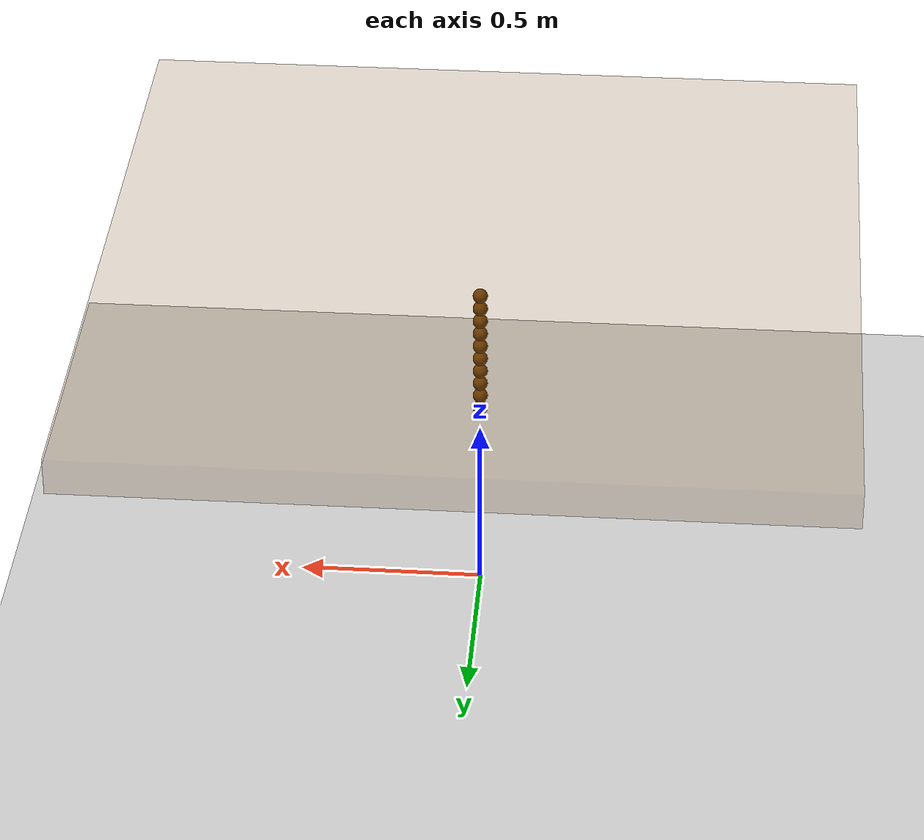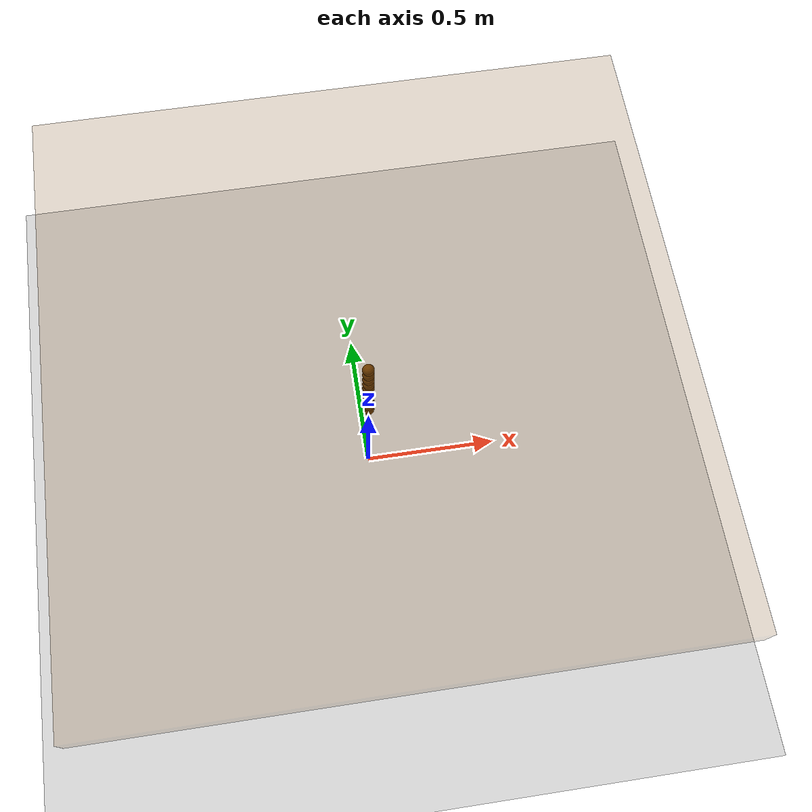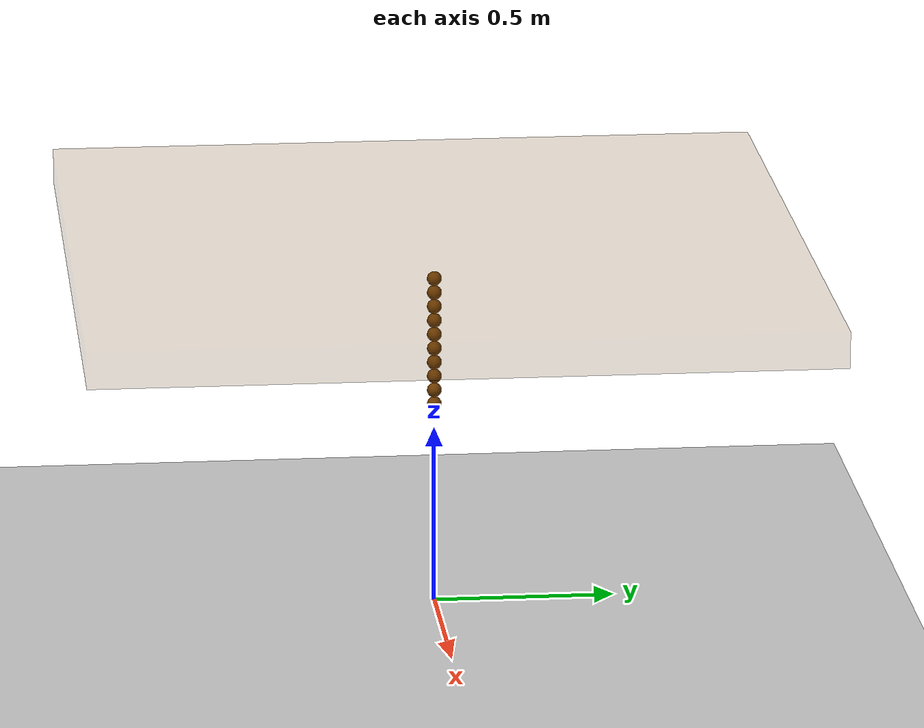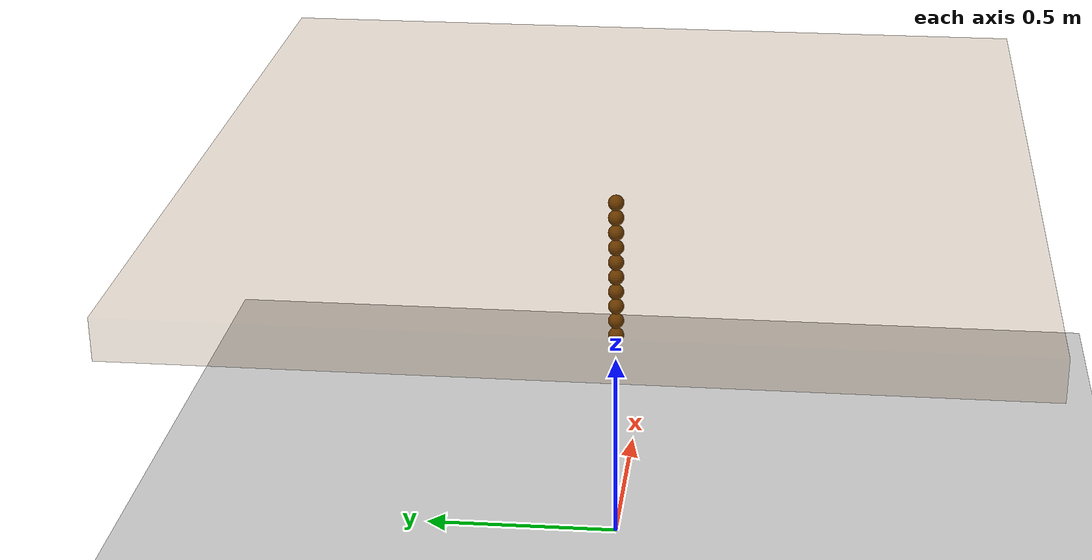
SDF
<?xml version="1.0" ?>
<sdf version="1.4">
  <world name="default">

    <physics type="ode">
      <gravity>0.0 0.0 -10.0</gravity>
      <ode>
        <solver>
          <type>quick</type>
          <iters>50</iters>
          <sor>0.8</sor>
        </solver>
        <constraints>
          <cfm>0.0</cfm>
          <erp>0.2</erp>
          <contact_max_correcting_vel>0.1</contact_max_correcting_vel>
          <contact_surface_layer>0.0</contact_surface_layer>
        </constraints>
      </ode>
      <real_time_update_rate>0</real_time_update_rate>
      <max_step_size>0.001</max_step_size>
    </physics>

    <include>
      <uri>model://sun</uri>
    </include>
    <include>
      <uri>model://ground_plane</uri>
    </include>
    <model name="wind_demo_model">
      <pose>0 0 0 0 0 0</pose>
      <static>false</static>
      <enable_wind>true</enable_wind>
      <self_collide>true</self_collide>
      <link name="roof">
        <kinematic>true</kinematic>
        <pose>0 0 1 0 0 0</pose>
        <collision name="collision">
          <geometry>
            <box>
              <size>1 1 0.1</size>
            </box>
          </geometry>
          <surface>
            <friction>
              <ode>
                <mu>0.1</mu>
                <mu2>0</mu2>
              </ode>
            </friction>
          </surface>
        </collision>
        <visual name="visual">
          <transparency>0.9</transparency>
          <geometry>
            <box>
              <size>2 2 0.1</size>
            </box>
          </geometry>
          <material>
            <ambient>0.2 0.2 0.2 1.0</ambient>
            <diffuse>.421 0.225 0.0 1.0</diffuse>
          </material>
        </visual>
      </link>
      <link name="sphere_1">
        <pose>0 0 0.93 0 0 0</pose>
        <collision name="collision">
          <geometry>
            <sphere>
              <radius>0.02</radius>
            </sphere>
          </geometry>
        </collision>
        <visual name="visual">
          <geometry>
            <sphere>
              <radius>0.02</radius>
            </sphere>
          </geometry>
          <material>
            <ambient>1.0 0 0 1.0</ambient>
            <diffuse>.421 0.225 0.0 1.0</diffuse>
          </material>
        </visual>
      </link>
      <joint name="sphere_1_joint" type="ball">
        <parent>roof</parent>
        <child>sphere_1</child>
      </joint>
      <link name="sphere_2">
        <pose>0 0 0.89 0 0 0</pose>
        <collision name="collision">
          <geometry>
            <sphere>
              <radius>0.02</radius>
            </sphere>
          </geometry>
        </collision>
        <visual name="visual">
          <geometry>
            <sphere>
              <radius>0.02</radius>
            </sphere>
          </geometry>
          <material>
            <ambient>1.0 0 0 1.0</ambient>
            <diffuse>.421 0.225 0.0 1.0</diffuse>
          </material>
        </visual>
      </link>
      <joint name="sphere_2_joint" type="ball">
        <parent>sphere_1</parent>
        <child>sphere_2</child>
      </joint>
      <link name="sphere_3">
        <pose>0 0 0.85 0 0 0</pose>
        <collision name="collision">
          <geometry>
            <sphere>
              <radius>0.02</radius>
            </sphere>
          </geometry>
        </collision>
        <visual name="visual">
          <geometry>
            <sphere>
              <radius>0.02</radius>
            </sphere>
          </geometry>
          <material>
            <ambient>1.0 0 0 1.0</ambient>
            <diffuse>.421 0.225 0.0 1.0</diffuse>
          </material>
        </visual>
      </link>
      <joint name="sphere_3_joint" type="ball">
        <parent>sphere_2</parent>
        <child>sphere_3</child>
      </joint>
      <link name="sphere_4">
        <pose>0 0 0.81 0 0 0</pose>
        <collision name="collision">
          <geometry>
            <sphere>
              <radius>0.02</radius>
            </sphere>
          </geometry>
        </collision>
        <visual name="visual">
          <geometry>
            <sphere>
              <radius>0.02</radius>
            </sphere>
          </geometry>
          <material>
            <ambient>1.0 0 0 1.0</ambient>
            <diffuse>.421 0.225 0.0 1.0</diffuse>
          </material>
        </visual>
      </link>
      <joint name="sphere_4_joint" type="ball">
        <parent>sphere_3</parent>
        <child>sphere_4</child>
      </joint>
      <link name="sphere_5">
        <pose>0 0 0.77 0 0 0</pose>
        <collision name="collision">
          <geometry>
            <sphere>
              <radius>0.02</radius>
            </sphere>
          </geometry>
        </collision>
        <visual name="visual">
          <geometry>
            <sphere>
              <radius>0.02</radius>
            </sphere>
          </geometry>
          <material>
            <ambient>1.0 0 0 1.0</ambient>
            <diffuse>.421 0.225 0.0 1.0</diffuse>
          </material>
        </visual>
      </link>
      <joint name="sphere_5_joint" type="ball">
        <parent>sphere_4</parent>
        <child>sphere_5</child>
      </joint>
      <link name="sphere_6">
        <pose>0 0 0.73 0 0 0</pose>
        <collision name="collision">
          <geometry>
            <sphere>
              <radius>0.02</radius>
            </sphere>
          </geometry>
        </collision>
        <visual name="visual">
          <geometry>
            <sphere>
              <radius>0.02</radius>
            </sphere>
          </geometry>
          <material>
            <ambient>1.0 0 0 1.0</ambient>
            <diffuse>.421 0.225 0.0 1.0</diffuse>
          </material>
        </visual>
      </link>
      <joint name="sphere_6_joint" type="ball">
        <parent>sphere_5</parent>
        <child>sphere_6</child>
      </joint>
      <link name="sphere_7">
        <pose>0 0 0.69 0 0 0</pose>
        <collision name="collision">
          <geometry>
            <sphere>
              <radius>0.02</radius>
            </sphere>
          </geometry>
        </collision>
        <visual name="visual">
          <geometry>
            <sphere>
              <radius>0.02</radius>
            </sphere>
          </geometry>
          <material>
            <ambient>1.0 0 0 1.0</ambient>
            <diffuse>.421 0.225 0.0 1.0</diffuse>
          </material>
        </visual>
      </link>
      <joint name="sphere_7_joint" type="ball">
        <parent>sphere_6</parent>
        <child>sphere_7</child>
      </joint>
      <link name="sphere_8">
        <pose>0 0 0.65 0 0 0</pose>
        <collision name="collision">
          <geometry>
            <sphere>
              <radius>0.02</radius>
            </sphere>
          </geometry>
        </collision>
        <visual name="visual">
          <geometry>
            <sphere>
              <radius>0.02</radius>
            </sphere>
          </geometry>
          <material>
            <ambient>1.0 0 0 1.0</ambient>
            <diffuse>.421 0.225 0.0 1.0</diffuse>
          </material>
        </visual>
      </link>
      <joint name="sphere_8_joint" type="ball">
        <parent>sphere_7</parent>
        <child>sphere_8</child>
      </joint>
      <link name="sphere_9">
        <pose>0 0 0.61 0 0 0</pose>
        <collision name="collision">
          <geometry>
            <sphere>
              <radius>0.02</radius>
            </sphere>
          </geometry>
        </collision>
        <visual name="visual">
          <geometry>
            <sphere>
              <radius>0.02</radius>
            </sphere>
          </geometry>
          <material>
            <ambient>1.0 0 0 1.0</ambient>
            <diffuse>.421 0.225 0.0 1.0</diffuse>
          </material>
        </visual>
      </link>
      <joint name="sphere_9_joint" type="ball">
        <parent>sphere_8</parent>
        <child>sphere_9</child>
      </joint>
      <link name="sphere_10">
        <pose>0 0 0.57 0 0 0</pose>
        <collision name="collision">
          <geometry>
            <sphere>
              <radius>0.02</radius>
            </sphere>
          </geometry>
        </collision>
        <visual name="visual">
          <geometry>
            <sphere>
              <radius>0.02</radius>
            </sphere>
          </geometry>
          <material>
            <ambient>1.0 0 0 1.0</ambient>
            <diffuse>.421 0.225 0.0 1.0</diffuse>
          </material>
        </visual>
      </link>
      <joint name="sphere_10_joint" type="ball">
        <parent>sphere_9</parent>
        <child>sphere_10</child>
      </joint>
    </model>

    <wind>
      <linear_velocity>0 5 5</linear_velocity>
    </wind>

    <!-- Load the plugin for the wind -->
    <plugin name="WindPlugin" filename="libWindPlugin.so">
      <force_approximation_scaling_factor>1</force_approximation_scaling_factor>
      <horizontal>
        <magnitude>
          <time_for_rise>10</time_for_rise>
          <sin>
            <amplitude_percent>0.05</amplitude_percent>
            <period>60</period>
          </sin>
          <noise type="gaussian">
           <mean>0</mean>
           <stddev>0.0002</stddev>
          </noise>
        </magnitude>
        <direction>
          <time_for_rise>30</time_for_rise>
          <sin>
            <amplitude>5</amplitude>
            <period>20</period>
          </sin>
          <noise type="gaussian">
           <mean>0</mean>
           <stddev>0.03</stddev>
          </noise>
        </direction>
      </horizontal>
      <vertical>
        <noise type="gaussian">
         <mean>0</mean>
         <stddev>0.03</stddev>
        </noise>
      </vertical>
    </plugin>

  </world>
</sdf>
